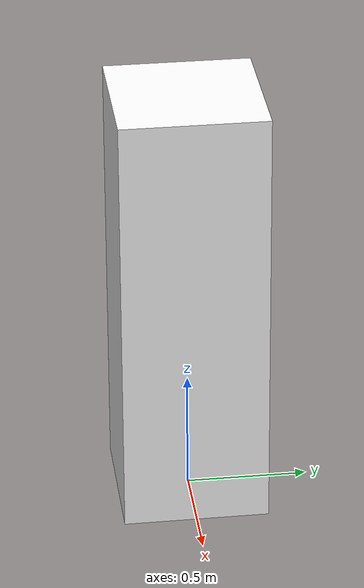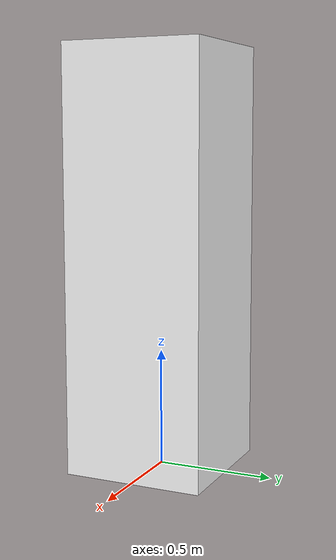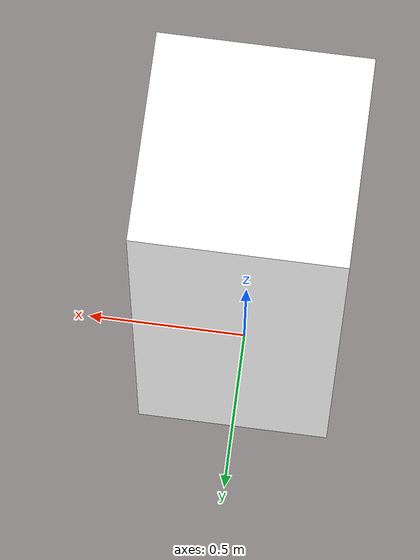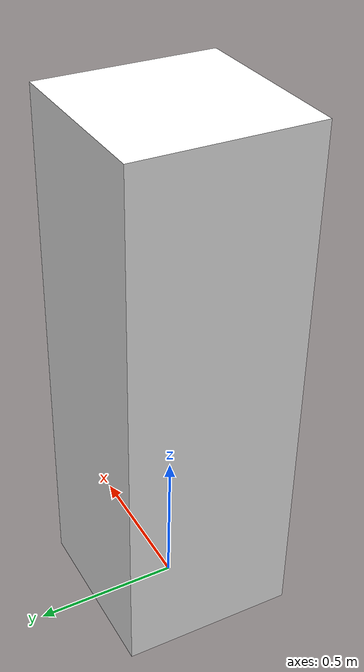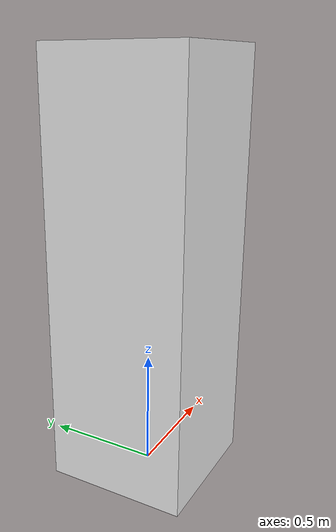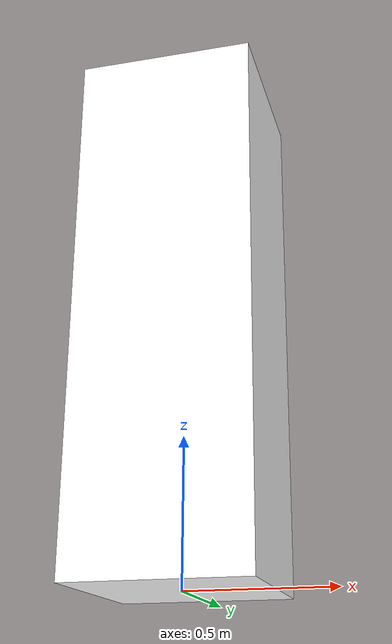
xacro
<?xml version="1.0"?>

<robot name="frigo" xmlns:xacro="http://www.ros.org/wiki/xacro">

<xacro:property name="altura" value="1.8" />
<xacro:property name="ancho" value="0.6" />
<xacro:property name="largo" value="0.6" />

<link name="world" />

<joint name="frigo" type="floating">
  <parent link="world"/>
  <child link="frigo_link"/>
  <origin xyz="0 0 0" rpy="0 0 0" />
</joint>

<link name="frigo_link">
  <visual>
    <geometry>
      <box size="${largo} ${ancho} ${altura}" />
    </geometry>
    <origin rpy="0 0 0" xyz="0 0 ${altura/2}" />
    <material name="white">
		<color rgba="1 1 1 1" />
    </material>
  </visual>
  <collision>
    <origin rpy="0 0 0" xyz="0 0 ${altura/2}" />
    <geometry>
      <box size="${largo} ${ancho} ${altura}" />
    </geometry>
  </collision>
  <inertial>
    <origin rpy="0 0 0" xyz="0 0 ${altura/2}" />
    <mass value="50" />
      <inertia ixx="5" ixy="0.0" ixz="0.0" iyy="5" iyz="0.0" izz="5"/>
  </inertial>
</link>

<gazebo reference="frigo_link">
  <material>Gazebo/White</material>
  <mu1>1</mu1>
  <mu2>1</mu2>
  <selfCollide>true</selfCollide>
  <turnGravityOff>false</turnGravityOff>
</gazebo>

</robot>
